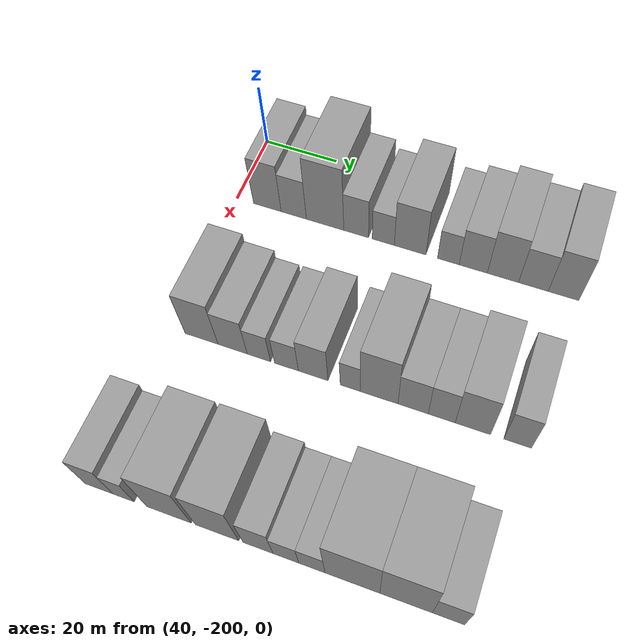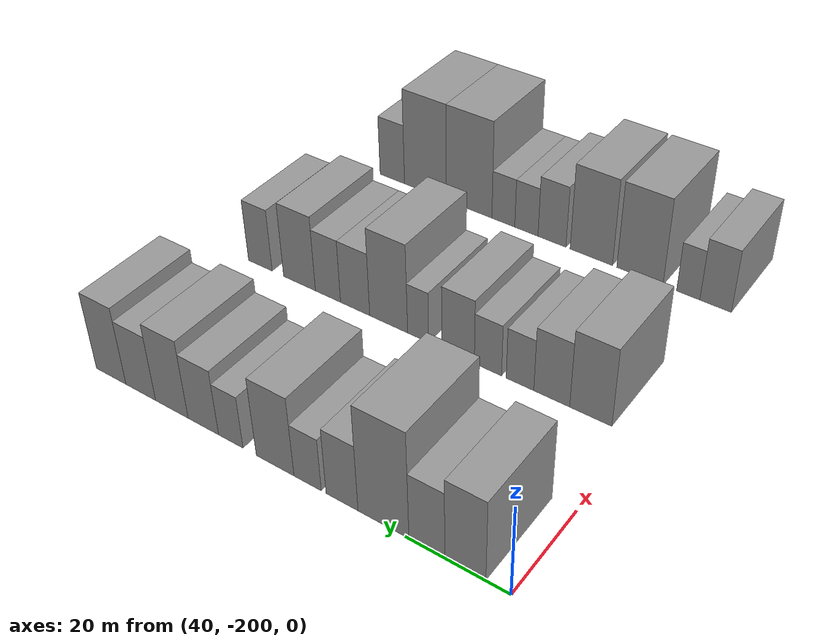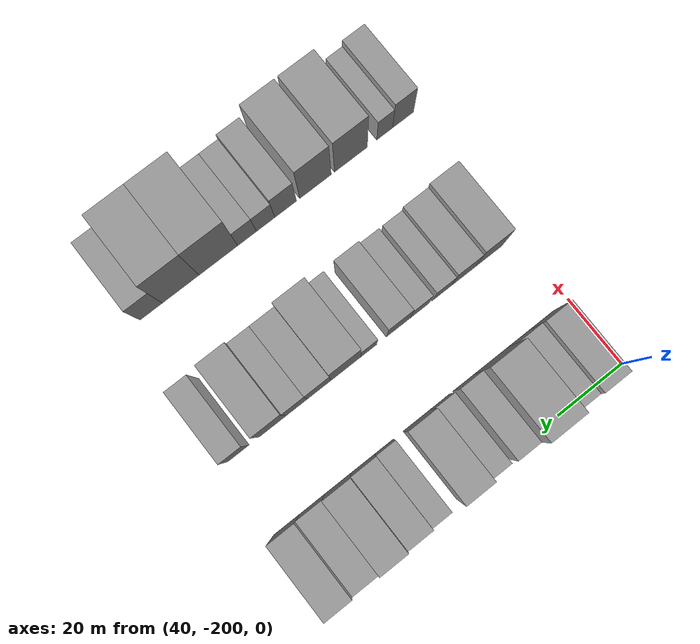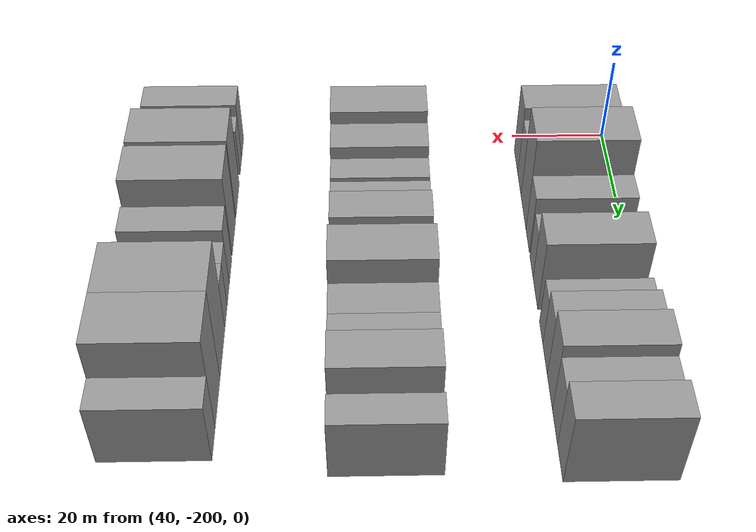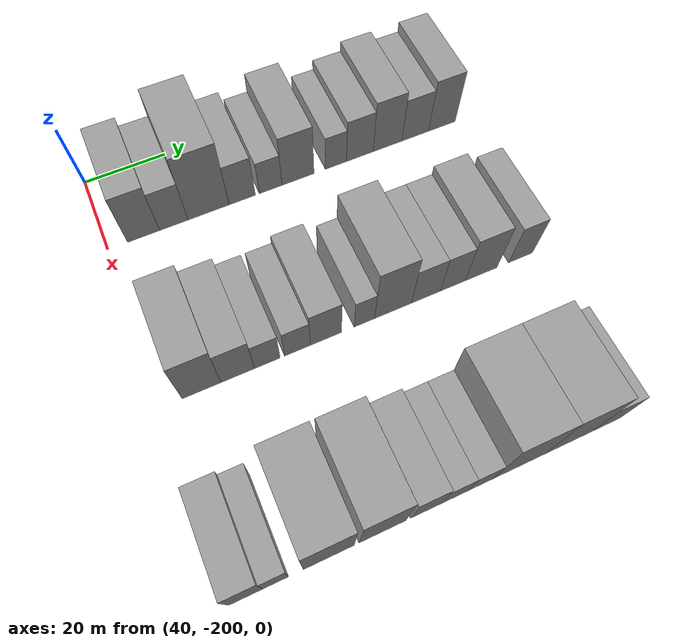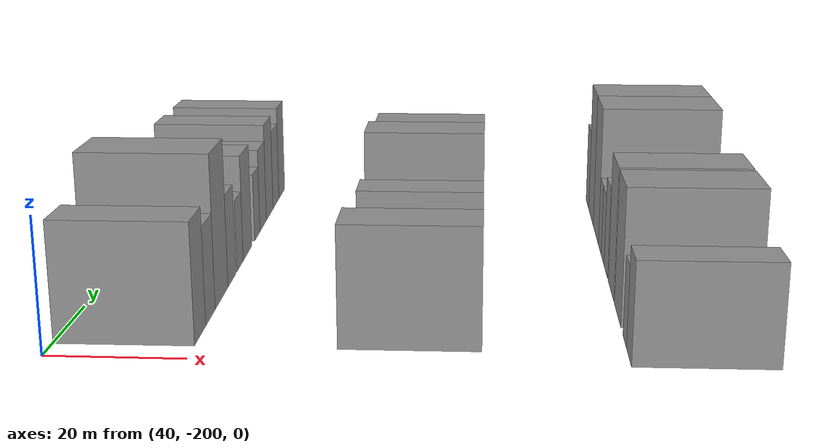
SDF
<sdf version="1.6">
 <world name="default">
  <model name="building_23">
   <static>1</static>
   <pose>50.0000 -191.5020 0 0.000000 0.000000 0.000000</pose>
   <link name="link">
    <pose>0 0 9.00 0 0 0</pose>
    <collision name="collision"><geometry><box><size>20.0000 7.6802 18.0000</size></box></geometry></collision>
    <visual name="visual">
     <cast_shadows>0</cast_shadows>
     <geometry><box><size>20.0000 7.6802 18.0000</size></box></geometry>
     <material>
      <script>
       <uri>model://grey_wall/materials/scripts</uri>
       <uri>model://grey_wall/materials/textures</uri>
       <name>vrc/grey_wall</name>
      </script>
     </material>
    </visual>
   </link>
  </model>
  <model name="building_24">
   <static>1</static>
   <pose>50.0000 -184.2094 0 0.000000 0.000000 0.000000</pose>
   <link name="link">
    <pose>0 0 7.50 0 0 0</pose>
    <collision name="collision"><geometry><box><size>20.0000 6.9049 15.0000</size></box></geometry></collision>
    <visual name="visual">
     <cast_shadows>0</cast_shadows>
     <geometry><box><size>20.0000 6.9049 15.0000</size></box></geometry>
     <material>
      <script>
       <uri>model://grey_wall/materials/scripts</uri>
       <uri>model://grey_wall/materials/textures</uri>
       <name>vrc/grey_wall</name>
      </script>
     </material>
    </visual>
   </link>
  </model>
  <model name="building_25">
   <static>1</static>
   <pose>50.0000 -175.6694 0 0.000000 0.000000 0.000000</pose>
   <link name="link">
    <pose>0 0 12.00 0 0 0</pose>
    <collision name="collision"><geometry><box><size>20.0000 10.1751 24.0000</size></box></geometry></collision>
    <visual name="visual">
     <cast_shadows>0</cast_shadows>
     <geometry><box><size>20.0000 10.1751 24.0000</size></box></geometry>
     <material>
      <script>
       <uri>model://grey_wall/materials/scripts</uri>
       <uri>model://grey_wall/materials/textures</uri>
       <name>vrc/grey_wall</name>
      </script>
     </material>
    </visual>
   </link>
  </model>
  <model name="building_26">
   <static>1</static>
   <pose>50.0000 -167.2690 0 0.000000 0.000000 0.000000</pose>
   <link name="link">
    <pose>0 0 7.50 0 0 0</pose>
    <collision name="collision"><geometry><box><size>20.0000 6.6258 15.0000</size></box></geometry></collision>
    <visual name="visual">
     <cast_shadows>0</cast_shadows>
     <geometry><box><size>20.0000 6.6258 15.0000</size></box></geometry>
     <material>
      <script>
       <uri>model://grey_wall/materials/scripts</uri>
       <uri>model://grey_wall/materials/textures</uri>
       <name>vrc/grey_wall</name>
      </script>
     </material>
    </visual>
   </link>
  </model>
  <model name="building_27">
   <static>1</static>
   <pose>50.0000 -160.0343 0 0.000000 0.000000 0.000000</pose>
   <link name="link">
    <pose>0 0 6.00 0 0 0</pose>
    <collision name="collision"><geometry><box><size>20.0000 5.8437 12.0000</size></box></geometry></collision>
    <visual name="visual">
     <cast_shadows>0</cast_shadows>
     <geometry><box><size>20.0000 5.8437 12.0000</size></box></geometry>
     <material>
      <script>
       <uri>model://grey_wall/materials/scripts</uri>
       <uri>model://grey_wall/materials/textures</uri>
       <name>vrc/grey_wall</name>
      </script>
     </material>
    </visual>
   </link>
  </model>
  <model name="building_28">
   <static>1</static>
   <pose>50.0000 -152.9661 0 0.000000 0.000000 0.000000</pose>
   <link name="link">
    <pose>0 0 9.00 0 0 0</pose>
    <collision name="collision"><geometry><box><size>20.0000 8.2926 18.0000</size></box></geometry></collision>
    <visual name="visual">
     <cast_shadows>0</cast_shadows>
     <geometry><box><size>20.0000 8.2926 18.0000</size></box></geometry>
     <material>
      <script>
       <uri>model://grey_wall/materials/scripts</uri>
       <uri>model://grey_wall/materials/textures</uri>
       <name>vrc/grey_wall</name>
      </script>
     </material>
    </visual>
   </link>
  </model>
  <model name="building_29">
   <static>1</static>
   <pose>50.0000 -143.0252 0 0.000000 0.000000 0.000000</pose>
   <link name="link">
    <pose>0 0 6.00 0 0 0</pose>
    <collision name="collision"><geometry><box><size>20.0000 5.5892 12.0000</size></box></geometry></collision>
    <visual name="visual">
     <cast_shadows>0</cast_shadows>
     <geometry><box><size>20.0000 5.5892 12.0000</size></box></geometry>
     <material>
      <script>
       <uri>model://grey_wall/materials/scripts</uri>
       <uri>model://grey_wall/materials/textures</uri>
       <name>vrc/grey_wall</name>
      </script>
     </material>
    </visual>
   </link>
  </model>
  <model name="building_30">
   <static>1</static>
   <pose>50.0000 -136.6404 0 0.000000 0.000000 0.000000</pose>
   <link name="link">
    <pose>0 0 7.50 0 0 0</pose>
    <collision name="collision"><geometry><box><size>20.0000 7.1805 15.0000</size></box></geometry></collision>
    <visual name="visual">
     <cast_shadows>0</cast_shadows>
     <geometry><box><size>20.0000 7.1805 15.0000</size></box></geometry>
     <material>
      <script>
       <uri>model://grey_wall/materials/scripts</uri>
       <uri>model://grey_wall/materials/textures</uri>
       <name>vrc/grey_wall</name>
      </script>
     </material>
    </visual>
   </link>
  </model>
  <model name="building_31">
   <static>1</static>
   <pose>50.0000 -129.1069 0 0.000000 0.000000 0.000000</pose>
   <link name="link">
    <pose>0 0 9.00 0 0 0</pose>
    <collision name="collision"><geometry><box><size>20.0000 7.8865 18.0000</size></box></geometry></collision>
    <visual name="visual">
     <cast_shadows>0</cast_shadows>
     <geometry><box><size>20.0000 7.8865 18.0000</size></box></geometry>
     <material>
      <script>
       <uri>model://grey_wall/materials/scripts</uri>
       <uri>model://grey_wall/materials/textures</uri>
       <name>vrc/grey_wall</name>
      </script>
     </material>
    </visual>
   </link>
  </model>
  <model name="building_32">
   <static>1</static>
   <pose>50.0000 -121.4697 0 0.000000 0.000000 0.000000</pose>
   <link name="link">
    <pose>0 0 7.50 0 0 0</pose>
    <collision name="collision"><geometry><box><size>20.0000 7.3879 15.0000</size></box></geometry></collision>
    <visual name="visual">
     <cast_shadows>0</cast_shadows>
     <geometry><box><size>20.0000 7.3879 15.0000</size></box></geometry>
     <material>
      <script>
       <uri>model://grey_wall/materials/scripts</uri>
       <uri>model://grey_wall/materials/textures</uri>
       <name>vrc/grey_wall</name>
      </script>
     </material>
    </visual>
   </link>
  </model>
  <model name="building_33">
   <static>1</static>
   <pose>50.0000 -113.9936 0 0.000000 0.000000 0.000000</pose>
   <link name="link">
    <pose>0 0 9.00 0 0 0</pose>
    <collision name="collision"><geometry><box><size>20.0000 7.5643 18.0000</size></box></geometry></collision>
    <visual name="visual">
     <cast_shadows>0</cast_shadows>
     <geometry><box><size>20.0000 7.5643 18.0000</size></box></geometry>
     <material>
      <script>
       <uri>model://grey_wall/materials/scripts</uri>
       <uri>model://grey_wall/materials/textures</uri>
       <name>vrc/grey_wall</name>
      </script>
     </material>
    </visual>
   </link>
  </model>
  <model name="building_111">
   <static>1</static>
   <pose>90.0000 -191.3999 0 0.000000 0.000000 0.000000</pose>
   <link name="link">
    <pose>0 0 9.00 0 0 0</pose>
    <collision name="collision"><geometry><box><size>20.0000 8.4954 18.0000</size></box></geometry></collision>
    <visual name="visual">
     <cast_shadows>0</cast_shadows>
     <geometry><box><size>20.0000 8.4954 18.0000</size></box></geometry>
     <material>
      <script>
       <uri>model://grey_wall/materials/scripts</uri>
       <uri>model://grey_wall/materials/textures</uri>
       <name>vrc/grey_wall</name>
      </script>
     </material>
    </visual>
   </link>
  </model>
  <model name="building_112">
   <static>1</static>
   <pose>90.0000 -183.4372 0 0.000000 0.000000 0.000000</pose>
   <link name="link">
    <pose>0 0 7.50 0 0 0</pose>
    <collision name="collision"><geometry><box><size>20.0000 7.4302 15.0000</size></box></geometry></collision>
    <visual name="visual">
     <cast_shadows>0</cast_shadows>
     <geometry><box><size>20.0000 7.4302 15.0000</size></box></geometry>
     <material>
      <script>
       <uri>model://grey_wall/materials/scripts</uri>
       <uri>model://grey_wall/materials/textures</uri>
       <name>vrc/grey_wall</name>
      </script>
     </material>
    </visual>
   </link>
  </model>
  <model name="building_113">
   <static>1</static>
   <pose>90.0000 -176.7924 0 0.000000 0.000000 0.000000</pose>
   <link name="link">
    <pose>0 0 6.00 0 0 0</pose>
    <collision name="collision"><geometry><box><size>20.0000 5.8593 12.0000</size></box></geometry></collision>
    <visual name="visual">
     <cast_shadows>0</cast_shadows>
     <geometry><box><size>20.0000 5.8593 12.0000</size></box></geometry>
     <material>
      <script>
       <uri>model://grey_wall/materials/scripts</uri>
       <uri>model://grey_wall/materials/textures</uri>
       <name>vrc/grey_wall</name>
      </script>
     </material>
    </visual>
   </link>
  </model>
  <model name="building_114">
   <static>1</static>
   <pose>90.0000 -169.8938 0 0.000000 0.000000 0.000000</pose>
   <link name="link">
    <pose>0 0 6.00 0 0 0</pose>
    <collision name="collision"><geometry><box><size>20.0000 5.9379 12.0000</size></box></geometry></collision>
    <visual name="visual">
     <cast_shadows>0</cast_shadows>
     <geometry><box><size>20.0000 5.9379 12.0000</size></box></geometry>
     <material>
      <script>
       <uri>model://grey_wall/materials/scripts</uri>
       <uri>model://grey_wall/materials/textures</uri>
       <name>vrc/grey_wall</name>
      </script>
     </material>
    </visual>
   </link>
  </model>
  <model name="building_115">
   <static>1</static>
   <pose>90.0000 -163.2886 0 0.000000 0.000000 0.000000</pose>
   <link name="link">
    <pose>0 0 7.50 0 0 0</pose>
    <collision name="collision"><geometry><box><size>20.0000 7.2726 15.0000</size></box></geometry></collision>
    <visual name="visual">
     <cast_shadows>0</cast_shadows>
     <geometry><box><size>20.0000 7.2726 15.0000</size></box></geometry>
     <material>
      <script>
       <uri>model://grey_wall/materials/scripts</uri>
       <uri>model://grey_wall/materials/textures</uri>
       <name>vrc/grey_wall</name>
      </script>
     </material>
    </visual>
   </link>
  </model>
  <model name="building_116">
   <static>1</static>
   <pose>90.0000 -154.2162 0 0.000000 0.000000 0.000000</pose>
   <link name="link">
    <pose>0 0 6.00 0 0 0</pose>
    <collision name="collision"><geometry><box><size>20.0000 4.8722 12.0000</size></box></geometry></collision>
    <visual name="visual">
     <cast_shadows>0</cast_shadows>
     <geometry><box><size>20.0000 4.8722 12.0000</size></box></geometry>
     <material>
      <script>
       <uri>model://grey_wall/materials/scripts</uri>
       <uri>model://grey_wall/materials/textures</uri>
       <name>vrc/grey_wall</name>
      </script>
     </material>
    </visual>
   </link>
  </model>
  <model name="building_117">
   <static>1</static>
   <pose>90.0000 -147.2846 0 0.000000 0.000000 0.000000</pose>
   <link name="link">
    <pose>0 0 10.50 0 0 0</pose>
    <collision name="collision"><geometry><box><size>20.0000 8.9911 21.0000</size></box></geometry></collision>
    <visual name="visual">
     <cast_shadows>0</cast_shadows>
     <geometry><box><size>20.0000 8.9911 21.0000</size></box></geometry>
     <material>
      <script>
       <uri>model://grey_wall/materials/scripts</uri>
       <uri>model://grey_wall/materials/textures</uri>
       <name>vrc/grey_wall</name>
      </script>
     </material>
    </visual>
   </link>
  </model>
  <model name="building_118">
   <static>1</static>
   <pose>90.0000 -139.2243 0 0.000000 0.000000 0.000000</pose>
   <link name="link">
    <pose>0 0 7.50 0 0 0</pose>
    <collision name="collision"><geometry><box><size>20.0000 7.1295 15.0000</size></box></geometry></collision>
    <visual name="visual">
     <cast_shadows>0</cast_shadows>
     <geometry><box><size>20.0000 7.1295 15.0000</size></box></geometry>
     <material>
      <script>
       <uri>model://grey_wall/materials/scripts</uri>
       <uri>model://grey_wall/materials/textures</uri>
       <name>vrc/grey_wall</name>
      </script>
     </material>
    </visual>
   </link>
  </model>
  <model name="building_119">
   <static>1</static>
   <pose>90.0000 -132.5127 0 0.000000 0.000000 0.000000</pose>
   <link name="link">
    <pose>0 0 7.50 0 0 0</pose>
    <collision name="collision"><geometry><box><size>20.0000 6.2936 15.0000</size></box></geometry></collision>
    <visual name="visual">
     <cast_shadows>0</cast_shadows>
     <geometry><box><size>20.0000 6.2936 15.0000</size></box></geometry>
     <material>
      <script>
       <uri>model://grey_wall/materials/scripts</uri>
       <uri>model://grey_wall/materials/textures</uri>
       <name>vrc/grey_wall</name>
      </script>
     </material>
    </visual>
   </link>
  </model>
  <model name="building_120">
   <static>1</static>
   <pose>90.0000 -125.2887 0 0.000000 0.000000 0.000000</pose>
   <link name="link">
    <pose>0 0 9.00 0 0 0</pose>
    <collision name="collision"><geometry><box><size>20.0000 8.1542 18.0000</size></box></geometry></collision>
    <visual name="visual">
     <cast_shadows>0</cast_shadows>
     <geometry><box><size>20.0000 8.1542 18.0000</size></box></geometry>
     <material>
      <script>
       <uri>model://grey_wall/materials/scripts</uri>
       <uri>model://grey_wall/materials/textures</uri>
       <name>vrc/grey_wall</name>
      </script>
     </material>
    </visual>
   </link>
  </model>
  <model name="building_121">
   <static>1</static>
   <pose>90.0000 -115.0782 0 0.000000 0.000000 0.000000</pose>
   <link name="link">
    <pose>0 0 7.50 0 0 0</pose>
    <collision name="collision"><geometry><box><size>20.0000 6.2668 15.0000</size></box></geometry></collision>
    <visual name="visual">
     <cast_shadows>0</cast_shadows>
     <geometry><box><size>20.0000 6.2668 15.0000</size></box></geometry>
     <material>
      <script>
       <uri>model://grey_wall/materials/scripts</uri>
       <uri>model://grey_wall/materials/textures</uri>
       <name>vrc/grey_wall</name>
      </script>
     </material>
    </visual>
   </link>
  </model>
  <model name="building_197">
   <static>1</static>
   <pose>130.0000 -196.8026 0 0.000000 0.000000 0.000000</pose>
   <link name="link">
    <pose>0 0 7.50 0 0 0</pose>
    <collision name="collision"><geometry><box><size>20.0000 6.6764 15.0000</size></box></geometry></collision>
    <visual name="visual">
     <cast_shadows>0</cast_shadows>
     <geometry><box><size>20.0000 6.6764 15.0000</size></box></geometry>
     <material>
      <script>
       <uri>model://grey_wall/materials/scripts</uri>
       <uri>model://grey_wall/materials/textures</uri>
       <name>vrc/grey_wall</name>
      </script>
     </material>
    </visual>
   </link>
  </model>
  <model name="building_198">
   <static>1</static>
   <pose>130.0000 -190.9548 0 0.000000 0.000000 0.000000</pose>
   <link name="link">
    <pose>0 0 6.00 0 0 0</pose>
    <collision name="collision"><geometry><box><size>20.0000 5.0191 12.0000</size></box></geometry></collision>
    <visual name="visual">
     <cast_shadows>0</cast_shadows>
     <geometry><box><size>20.0000 5.0191 12.0000</size></box></geometry>
     <material>
      <script>
       <uri>model://grey_wall/materials/scripts</uri>
       <uri>model://grey_wall/materials/textures</uri>
       <name>vrc/grey_wall</name>
      </script>
     </material>
    </visual>
   </link>
  </model>
  <model name="building_199">
   <static>1</static>
   <pose>130.0000 -180.2744 0 0.000000 0.000000 0.000000</pose>
   <link name="link">
    <pose>0 0 10.50 0 0 0</pose>
    <collision name="collision"><geometry><box><size>20.0000 10.3417 21.0000</size></box></geometry></collision>
    <visual name="visual">
     <cast_shadows>0</cast_shadows>
     <geometry><box><size>20.0000 10.3417 21.0000</size></box></geometry>
     <material>
      <script>
       <uri>model://grey_wall/materials/scripts</uri>
       <uri>model://grey_wall/materials/textures</uri>
       <name>vrc/grey_wall</name>
      </script>
     </material>
    </visual>
   </link>
  </model>
  <model name="building_200">
   <static>1</static>
   <pose>130.0000 -169.1721 0 0.000000 0.000000 0.000000</pose>
   <link name="link">
    <pose>0 0 10.50 0 0 0</pose>
    <collision name="collision"><geometry><box><size>20.0000 9.8630 21.0000</size></box></geometry></collision>
    <visual name="visual">
     <cast_shadows>0</cast_shadows>
     <geometry><box><size>20.0000 9.8630 21.0000</size></box></geometry>
     <material>
      <script>
       <uri>model://grey_wall/materials/scripts</uri>
       <uri>model://grey_wall/materials/textures</uri>
       <name>vrc/grey_wall</name>
      </script>
     </material>
    </visual>
   </link>
  </model>
  <model name="building_201">
   <static>1</static>
   <pose>130.0000 -159.8825 0 0.000000 0.000000 0.000000</pose>
   <link name="link">
    <pose>0 0 7.50 0 0 0</pose>
    <collision name="collision"><geometry><box><size>20.0000 6.7161 15.0000</size></box></geometry></collision>
    <visual name="visual">
     <cast_shadows>0</cast_shadows>
     <geometry><box><size>20.0000 6.7161 15.0000</size></box></geometry>
     <material>
      <script>
       <uri>model://grey_wall/materials/scripts</uri>
       <uri>model://grey_wall/materials/textures</uri>
       <name>vrc/grey_wall</name>
      </script>
     </material>
    </visual>
   </link>
  </model>
  <model name="building_202">
   <static>1</static>
   <pose>130.0000 -153.6751 0 0.000000 0.000000 0.000000</pose>
   <link name="link">
    <pose>0 0 6.00 0 0 0</pose>
    <collision name="collision"><geometry><box><size>20.0000 5.6987 12.0000</size></box></geometry></collision>
    <visual name="visual">
     <cast_shadows>0</cast_shadows>
     <geometry><box><size>20.0000 5.6987 12.0000</size></box></geometry>
     <material>
      <script>
       <uri>model://grey_wall/materials/scripts</uri>
       <uri>model://grey_wall/materials/textures</uri>
       <name>vrc/grey_wall</name>
      </script>
     </material>
    </visual>
   </link>
  </model>
  <model name="building_203">
   <static>1</static>
   <pose>130.0000 -147.9579 0 0.000000 0.000000 0.000000</pose>
   <link name="link">
    <pose>0 0 6.00 0 0 0</pose>
    <collision name="collision"><geometry><box><size>20.0000 5.7356 12.0000</size></box></geometry></collision>
    <visual name="visual">
     <cast_shadows>0</cast_shadows>
     <geometry><box><size>20.0000 5.7356 12.0000</size></box></geometry>
     <material>
      <script>
       <uri>model://grey_wall/materials/scripts</uri>
       <uri>model://grey_wall/materials/textures</uri>
       <name>vrc/grey_wall</name>
      </script>
     </material>
    </visual>
   </link>
  </model>
  <model name="building_204">
   <static>1</static>
   <pose>130.0000 -139.2034 0 0.000000 0.000000 0.000000</pose>
   <link name="link">
    <pose>0 0 12.00 0 0 0</pose>
    <collision name="collision"><geometry><box><size>20.0000 11.7734 24.0000</size></box></geometry></collision>
    <visual name="visual">
     <cast_shadows>0</cast_shadows>
     <geometry><box><size>20.0000 11.7734 24.0000</size></box></geometry>
     <material>
      <script>
       <uri>model://grey_wall/materials/scripts</uri>
       <uri>model://grey_wall/materials/textures</uri>
       <name>vrc/grey_wall</name>
      </script>
     </material>
    </visual>
   </link>
  </model>
  <model name="building_205">
   <static>1</static>
   <pose>130.0000 -127.7660 0 0.000000 0.000000 0.000000</pose>
   <link name="link">
    <pose>0 0 12.00 0 0 0</pose>
    <collision name="collision"><geometry><box><size>20.0000 11.1015 24.0000</size></box></geometry></collision>
    <visual name="visual">
     <cast_shadows>0</cast_shadows>
     <geometry><box><size>20.0000 11.1015 24.0000</size></box></geometry>
     <material>
      <script>
       <uri>model://grey_wall/materials/scripts</uri>
       <uri>model://grey_wall/materials/textures</uri>
       <name>vrc/grey_wall</name>
      </script>
     </material>
    </visual>
   </link>
  </model>
  <model name="building_206">
   <static>1</static>
   <pose>130.0000 -118.8741 0 0.000000 0.000000 0.000000</pose>
   <link name="link">
    <pose>0 0 7.50 0 0 0</pose>
    <collision name="collision"><geometry><box><size>20.0000 6.6824 15.0000</size></box></geometry></collision>
    <visual name="visual">
     <cast_shadows>0</cast_shadows>
     <geometry><box><size>20.0000 6.6824 15.0000</size></box></geometry>
     <material>
      <script>
       <uri>model://grey_wall/materials/scripts</uri>
       <uri>model://grey_wall/materials/textures</uri>
       <name>vrc/grey_wall</name>
      </script>
     </material>
    </visual>
   </link>
  </model>
 </world>
</sdf>
